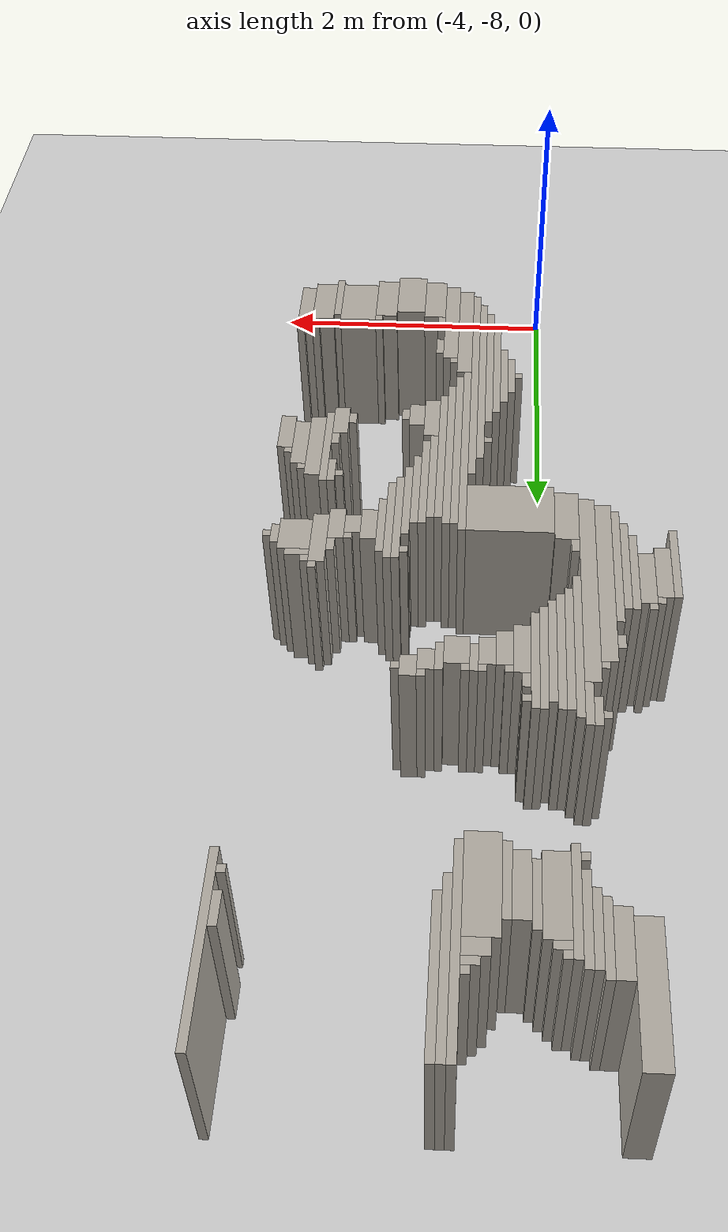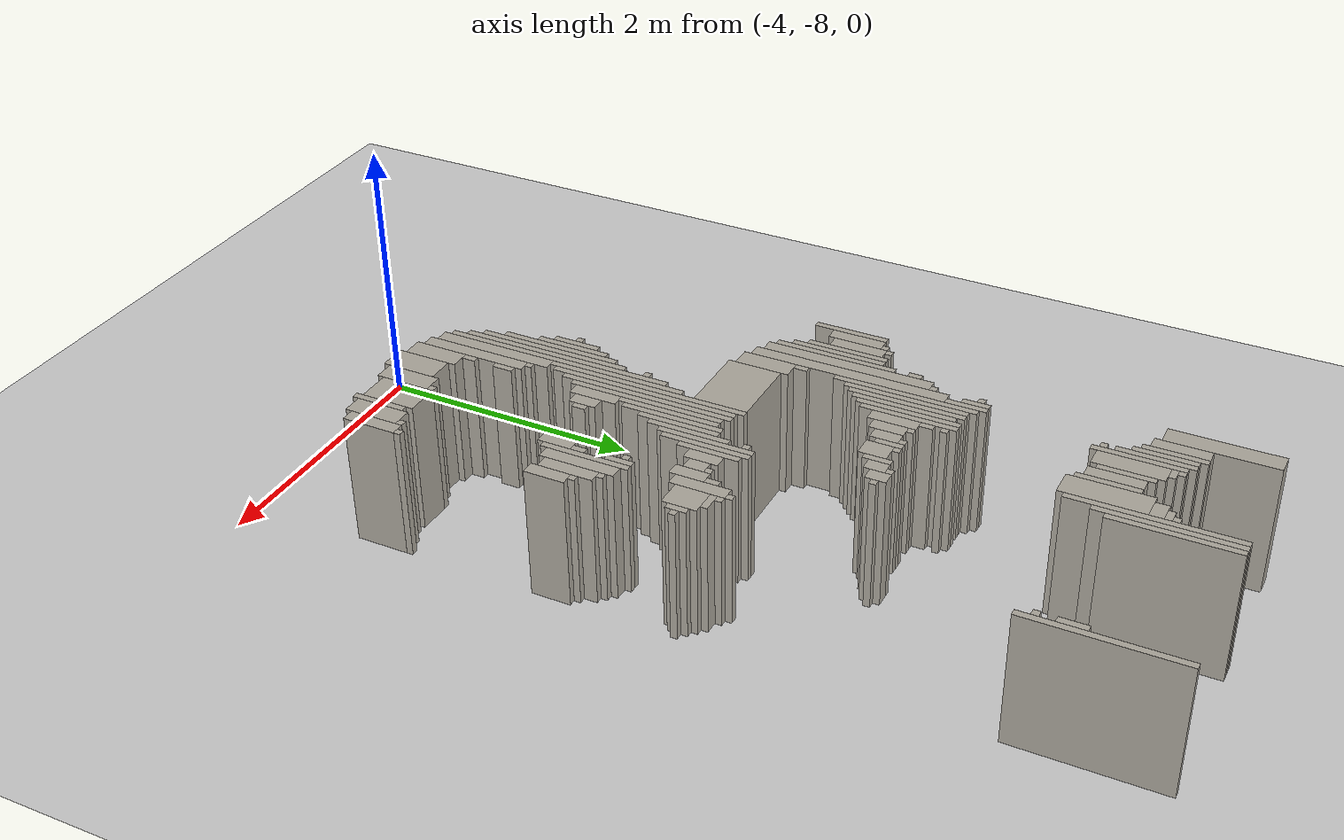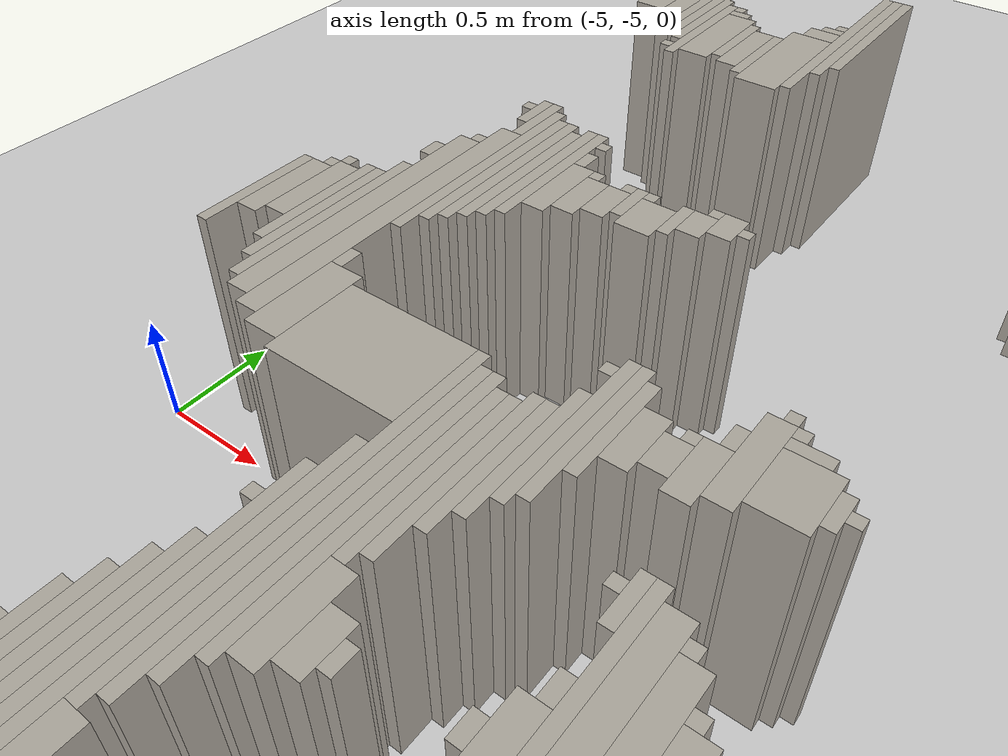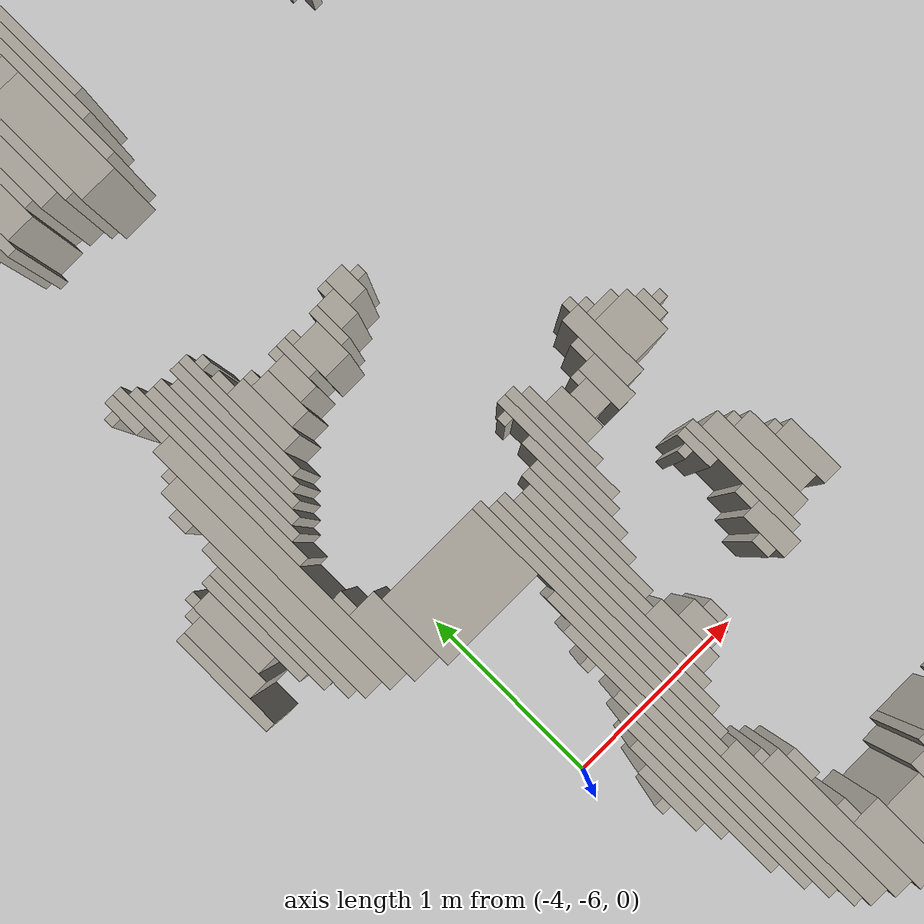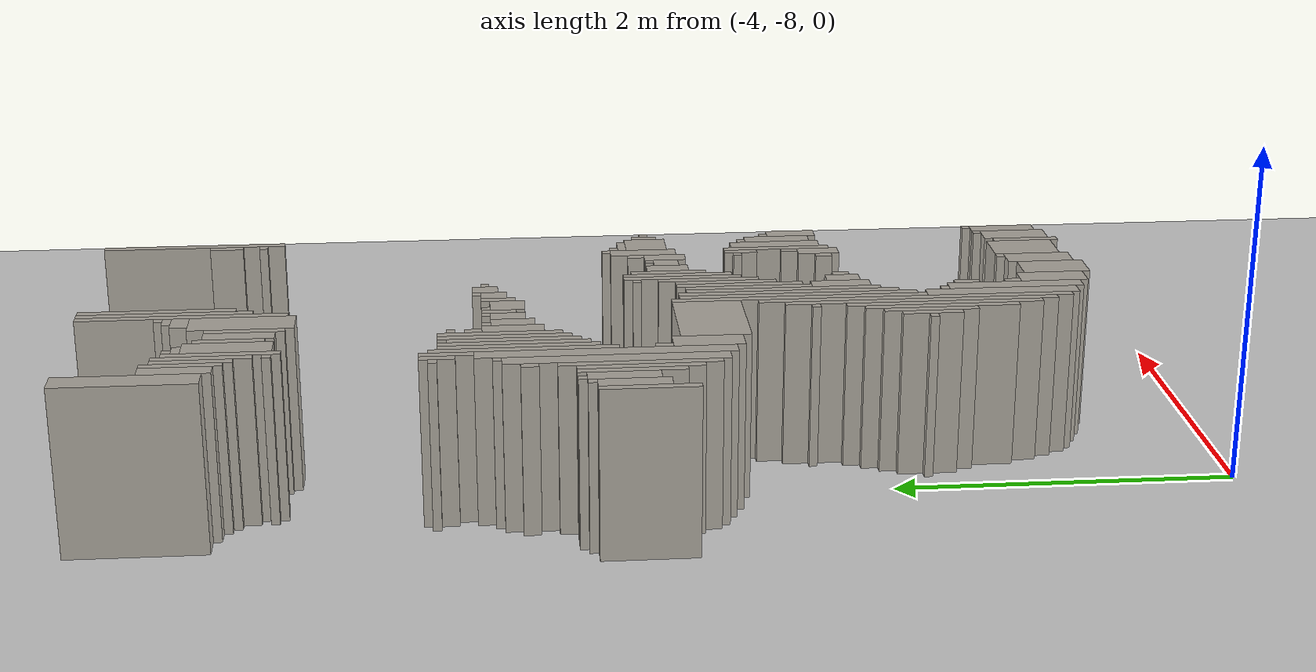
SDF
<sdf version="1.6">
 <world name="fr079_office">
  <include><uri>model://sun</uri></include>
  <include><uri>model://ground_plane</uri></include>
  <model name="fr079_office_walls">
   <static>true</static>
   <link name="w0013">
    <pose>-3.048 -7.106 0.500 0 0 0</pose>
    <collision name="c"><geometry><box><size>0.200 0.400 1.000</size></box></geometry></collision>
    <visual name="v">
     <geometry><box><size>0.200 0.400 1.000</size></box></geometry>
     <material><ambient>0.68 0.66 0.62 1</ambient><diffuse>0.68 0.66 0.62 1</diffuse></material>
    </visual>
   </link>
   <link name="w0032">
    <pose>-3.223 -7.056 0.500 0 0 0</pose>
    <collision name="c"><geometry><box><size>0.150 0.400 1.000</size></box></geometry></collision>
    <visual name="v">
     <geometry><box><size>0.150 0.400 1.000</size></box></geometry>
     <material><ambient>0.68 0.66 0.62 1</ambient><diffuse>0.68 0.66 0.62 1</diffuse></material>
    </visual>
   </link>
   <link name="w0033">
    <pose>-2.873 -7.056 0.500 0 0 0</pose>
    <collision name="c"><geometry><box><size>0.150 0.400 1.000</size></box></geometry></collision>
    <visual name="v">
     <geometry><box><size>0.150 0.400 1.000</size></box></geometry>
     <material><ambient>0.68 0.66 0.62 1</ambient><diffuse>0.68 0.66 0.62 1</diffuse></material>
    </visual>
   </link>
   <link name="w0034">
    <pose>-2.523 -7.056 0.500 0 0 0</pose>
    <collision name="c"><geometry><box><size>0.050 0.400 1.000</size></box></geometry></collision>
    <visual name="v">
     <geometry><box><size>0.050 0.400 1.000</size></box></geometry>
     <material><ambient>0.68 0.66 0.62 1</ambient><diffuse>0.68 0.66 0.62 1</diffuse></material>
    </visual>
   </link>
   <link name="w0056">
    <pose>-3.348 -6.806 0.500 0 0 0</pose>
    <collision name="c"><geometry><box><size>0.100 0.800 1.000</size></box></geometry></collision>
    <visual name="v">
     <geometry><box><size>0.100 0.800 1.000</size></box></geometry>
     <material><ambient>0.68 0.66 0.62 1</ambient><diffuse>0.68 0.66 0.62 1</diffuse></material>
    </visual>
   </link>
   <link name="w0057">
    <pose>-2.673 -7.006 0.500 0 0 0</pose>
    <collision name="c"><geometry><box><size>0.250 0.400 1.000</size></box></geometry></collision>
    <visual name="v">
     <geometry><box><size>0.250 0.400 1.000</size></box></geometry>
     <material><ambient>0.68 0.66 0.62 1</ambient><diffuse>0.68 0.66 0.62 1</diffuse></material>
    </visual>
   </link>
   <link name="w0058">
    <pose>-2.423 -7.006 0.500 0 0 0</pose>
    <collision name="c"><geometry><box><size>0.150 0.400 1.000</size></box></geometry></collision>
    <visual name="v">
     <geometry><box><size>0.150 0.400 1.000</size></box></geometry>
     <material><ambient>0.68 0.66 0.62 1</ambient><diffuse>0.68 0.66 0.62 1</diffuse></material>
    </visual>
   </link>
   <link name="w0083">
    <pose>-3.448 -6.706 0.500 0 0 0</pose>
    <collision name="c"><geometry><box><size>0.100 0.900 1.000</size></box></geometry></collision>
    <visual name="v">
     <geometry><box><size>0.100 0.900 1.000</size></box></geometry>
     <material><ambient>0.68 0.66 0.62 1</ambient><diffuse>0.68 0.66 0.62 1</diffuse></material>
    </visual>
   </link>
   <link name="w0084">
    <pose>-2.298 -6.956 0.500 0 0 0</pose>
    <collision name="c"><geometry><box><size>0.100 0.400 1.000</size></box></geometry></collision>
    <visual name="v">
     <geometry><box><size>0.100 0.400 1.000</size></box></geometry>
     <material><ambient>0.68 0.66 0.62 1</ambient><diffuse>0.68 0.66 0.62 1</diffuse></material>
    </visual>
   </link>
   <link name="w0108">
    <pose>-3.523 -6.181 0.500 0 0 0</pose>
    <collision name="c"><geometry><box><size>0.050 1.850 1.000</size></box></geometry></collision>
    <visual name="v">
     <geometry><box><size>0.050 1.850 1.000</size></box></geometry>
     <material><ambient>0.68 0.66 0.62 1</ambient><diffuse>0.68 0.66 0.62 1</diffuse></material>
    </visual>
   </link>
   <link name="w0140">
    <pose>-3.573 -6.206 0.500 0 0 0</pose>
    <collision name="c"><geometry><box><size>0.050 1.600 1.000</size></box></geometry></collision>
    <visual name="v">
     <geometry><box><size>0.050 1.600 1.000</size></box></geometry>
     <material><ambient>0.68 0.66 0.62 1</ambient><diffuse>0.68 0.66 0.62 1</diffuse></material>
    </visual>
   </link>
   <link name="w0164">
    <pose>-3.623 -6.331 0.500 0 0 0</pose>
    <collision name="c"><geometry><box><size>0.050 1.150 1.000</size></box></geometry></collision>
    <visual name="v">
     <geometry><box><size>0.050 1.150 1.000</size></box></geometry>
     <material><ambient>0.68 0.66 0.62 1</ambient><diffuse>0.68 0.66 0.62 1</diffuse></material>
    </visual>
   </link>
   <link name="w0182">
    <pose>-3.273 -6.806 0.500 0 0 0</pose>
    <collision name="c"><geometry><box><size>0.050 0.100 1.000</size></box></geometry></collision>
    <visual name="v">
     <geometry><box><size>0.050 0.100 1.000</size></box></geometry>
     <material><ambient>0.68 0.66 0.62 1</ambient><diffuse>0.68 0.66 0.62 1</diffuse></material>
    </visual>
   </link>
   <link name="w0183">
    <pose>-2.823 -6.831 0.500 0 0 0</pose>
    <collision name="c"><geometry><box><size>0.050 0.050 1.000</size></box></geometry></collision>
    <visual name="v">
     <geometry><box><size>0.050 0.050 1.000</size></box></geometry>
     <material><ambient>0.68 0.66 0.62 1</ambient><diffuse>0.68 0.66 0.62 1</diffuse></material>
    </visual>
   </link>
   <link name="w0201">
    <pose>-2.373 -6.781 0.500 0 0 0</pose>
    <collision name="c"><geometry><box><size>0.050 0.050 1.000</size></box></geometry></collision>
    <visual name="v">
     <geometry><box><size>0.050 0.050 1.000</size></box></geometry>
     <material><ambient>0.68 0.66 0.62 1</ambient><diffuse>0.68 0.66 0.62 1</diffuse></material>
    </visual>
   </link>
   <link name="w0215">
    <pose>-3.673 -6.306 0.500 0 0 0</pose>
    <collision name="c"><geometry><box><size>0.050 0.900 1.000</size></box></geometry></collision>
    <visual name="v">
     <geometry><box><size>0.050 0.900 1.000</size></box></geometry>
     <material><ambient>0.68 0.66 0.62 1</ambient><diffuse>0.68 0.66 0.62 1</diffuse></material>
    </visual>
   </link>
   <link name="w0216">
    <pose>-2.273 -6.731 0.500 0 0 0</pose>
    <collision name="c"><geometry><box><size>0.050 0.050 1.000</size></box></geometry></collision>
    <visual name="v">
     <geometry><box><size>0.050 0.050 1.000</size></box></geometry>
     <material><ambient>0.68 0.66 0.62 1</ambient><diffuse>0.68 0.66 0.62 1</diffuse></material>
    </visual>
   </link>
   <link name="w0256">
    <pose>-3.273 -6.531 0.500 0 0 0</pose>
    <collision name="c"><geometry><box><size>0.050 0.150 1.000</size></box></geometry></collision>
    <visual name="v">
     <geometry><box><size>0.050 0.150 1.000</size></box></geometry>
     <material><ambient>0.68 0.66 0.62 1</ambient><diffuse>0.68 0.66 0.62 1</diffuse></material>
    </visual>
   </link>
   <link name="w0284">
    <pose>-3.723 -6.231 0.500 0 0 0</pose>
    <collision name="c"><geometry><box><size>0.050 0.550 1.000</size></box></geometry></collision>
    <visual name="v">
     <geometry><box><size>0.050 0.550 1.000</size></box></geometry>
     <material><ambient>0.68 0.66 0.62 1</ambient><diffuse>0.68 0.66 0.62 1</diffuse></material>
    </visual>
   </link>
   <link name="w0319">
    <pose>-3.773 -6.231 0.500 0 0 0</pose>
    <collision name="c"><geometry><box><size>0.050 0.350 1.000</size></box></geometry></collision>
    <visual name="v">
     <geometry><box><size>0.050 0.350 1.000</size></box></geometry>
     <material><ambient>0.68 0.66 0.62 1</ambient><diffuse>0.68 0.66 0.62 1</diffuse></material>
    </visual>
   </link>
   <link name="w0320">
    <pose>-3.373 -6.381 0.500 0 0 0</pose>
    <collision name="c"><geometry><box><size>0.050 0.050 1.000</size></box></geometry></collision>
    <visual name="v">
     <geometry><box><size>0.050 0.050 1.000</size></box></geometry>
     <material><ambient>0.68 0.66 0.62 1</ambient><diffuse>0.68 0.66 0.62 1</diffuse></material>
    </visual>
   </link>
   <link name="w0363">
    <pose>-3.823 -6.231 0.500 0 0 0</pose>
    <collision name="c"><geometry><box><size>0.050 0.050 1.000</size></box></geometry></collision>
    <visual name="v">
     <geometry><box><size>0.050 0.050 1.000</size></box></geometry>
     <material><ambient>0.68 0.66 0.62 1</ambient><diffuse>0.68 0.66 0.62 1</diffuse></material>
    </visual>
   </link>
   <link name="w0364">
    <pose>-3.473 -5.506 0.500 0 0 0</pose>
    <collision name="c"><geometry><box><size>0.050 1.500 1.000</size></box></geometry></collision>
    <visual name="v">
     <geometry><box><size>0.050 1.500 1.000</size></box></geometry>
     <material><ambient>0.68 0.66 0.62 1</ambient><diffuse>0.68 0.66 0.62 1</diffuse></material>
    </visual>
   </link>
   <link name="w0377">
    <pose>-3.423 -5.506 0.500 0 0 0</pose>
    <collision name="c"><geometry><box><size>0.050 1.400 1.000</size></box></geometry></collision>
    <visual name="v">
     <geometry><box><size>0.050 1.400 1.000</size></box></geometry>
     <material><ambient>0.68 0.66 0.62 1</ambient><diffuse>0.68 0.66 0.62 1</diffuse></material>
    </visual>
   </link>
   <link name="w0395">
    <pose>-3.373 -5.456 0.500 0 0 0</pose>
    <collision name="c"><geometry><box><size>0.050 1.300 1.000</size></box></geometry></collision>
    <visual name="v">
     <geometry><box><size>0.050 1.300 1.000</size></box></geometry>
     <material><ambient>0.68 0.66 0.62 1</ambient><diffuse>0.68 0.66 0.62 1</diffuse></material>
    </visual>
   </link>
   <link name="w0422">
    <pose>-3.323 -5.431 0.500 0 0 0</pose>
    <collision name="c"><geometry><box><size>0.050 1.150 1.000</size></box></geometry></collision>
    <visual name="v">
     <geometry><box><size>0.050 1.150 1.000</size></box></geometry>
     <material><ambient>0.68 0.66 0.62 1</ambient><diffuse>0.68 0.66 0.62 1</diffuse></material>
    </visual>
   </link>
   <link name="w0434">
    <pose>-3.248 -5.781 0.500 0 0 0</pose>
    <collision name="c"><geometry><box><size>0.100 0.350 1.000</size></box></geometry></collision>
    <visual name="v">
     <geometry><box><size>0.100 0.350 1.000</size></box></geometry>
     <material><ambient>0.68 0.66 0.62 1</ambient><diffuse>0.68 0.66 0.62 1</diffuse></material>
    </visual>
   </link>
   <link name="w0452">
    <pose>-3.148 -5.806 0.500 0 0 0</pose>
    <collision name="c"><geometry><box><size>0.100 0.200 1.000</size></box></geometry></collision>
    <visual name="v">
     <geometry><box><size>0.100 0.200 1.000</size></box></geometry>
     <material><ambient>0.68 0.66 0.62 1</ambient><diffuse>0.68 0.66 0.62 1</diffuse></material>
    </visual>
   </link>
   <link name="w0466">
    <pose>-3.073 -5.806 0.500 0 0 0</pose>
    <collision name="c"><geometry><box><size>0.050 0.100 1.000</size></box></geometry></collision>
    <visual name="v">
     <geometry><box><size>0.050 0.100 1.000</size></box></geometry>
     <material><ambient>0.68 0.66 0.62 1</ambient><diffuse>0.68 0.66 0.62 1</diffuse></material>
    </visual>
   </link>
   <link name="w0467">
    <pose>-2.648 -5.731 0.500 0 0 0</pose>
    <collision name="c"><geometry><box><size>0.100 0.250 1.000</size></box></geometry></collision>
    <visual name="v">
     <geometry><box><size>0.100 0.250 1.000</size></box></geometry>
     <material><ambient>0.68 0.66 0.62 1</ambient><diffuse>0.68 0.66 0.62 1</diffuse></material>
    </visual>
   </link>
   <link name="w0480">
    <pose>-2.723 -5.756 0.500 0 0 0</pose>
    <collision name="c"><geometry><box><size>0.050 0.100 1.000</size></box></geometry></collision>
    <visual name="v">
     <geometry><box><size>0.050 0.100 1.000</size></box></geometry>
     <material><ambient>0.68 0.66 0.62 1</ambient><diffuse>0.68 0.66 0.62 1</diffuse></material>
    </visual>
   </link>
   <link name="w0481">
    <pose>-2.573 -5.481 0.500 0 0 0</pose>
    <collision name="c"><geometry><box><size>0.050 0.650 1.000</size></box></geometry></collision>
    <visual name="v">
     <geometry><box><size>0.050 0.650 1.000</size></box></geometry>
     <material><ambient>0.68 0.66 0.62 1</ambient><diffuse>0.68 0.66 0.62 1</diffuse></material>
    </visual>
   </link>
   <link name="w0496">
    <pose>-2.498 -5.481 0.500 0 0 0</pose>
    <collision name="c"><geometry><box><size>0.100 0.550 1.000</size></box></geometry></collision>
    <visual name="v">
     <geometry><box><size>0.100 0.550 1.000</size></box></geometry>
     <material><ambient>0.68 0.66 0.62 1</ambient><diffuse>0.68 0.66 0.62 1</diffuse></material>
    </visual>
   </link>
   <link name="w0497">
    <pose>-2.298 -5.606 0.500 0 0 0</pose>
    <collision name="c"><geometry><box><size>0.100 0.300 1.000</size></box></geometry></collision>
    <visual name="v">
     <geometry><box><size>0.100 0.300 1.000</size></box></geometry>
     <material><ambient>0.68 0.66 0.62 1</ambient><diffuse>0.68 0.66 0.62 1</diffuse></material>
    </visual>
   </link>
   <link name="w0512">
    <pose>-2.398 -5.506 0.500 0 0 0</pose>
    <collision name="c"><geometry><box><size>0.100 0.400 1.000</size></box></geometry></collision>
    <visual name="v">
     <geometry><box><size>0.100 0.400 1.000</size></box></geometry>
     <material><ambient>0.68 0.66 0.62 1</ambient><diffuse>0.68 0.66 0.62 1</diffuse></material>
    </visual>
   </link>
   <link name="w0532">
    <pose>-3.623 -5.581 0.500 0 0 0</pose>
    <collision name="c"><geometry><box><size>0.050 0.050 1.000</size></box></geometry></collision>
    <visual name="v">
     <geometry><box><size>0.050 0.050 1.000</size></box></geometry>
     <material><ambient>0.68 0.66 0.62 1</ambient><diffuse>0.68 0.66 0.62 1</diffuse></material>
    </visual>
   </link>
   <link name="w0533">
    <pose>-3.273 -5.231 0.500 0 0 0</pose>
    <collision name="c"><geometry><box><size>0.050 0.750 1.000</size></box></geometry></collision>
    <visual name="v">
     <geometry><box><size>0.050 0.750 1.000</size></box></geometry>
     <material><ambient>0.68 0.66 0.62 1</ambient><diffuse>0.68 0.66 0.62 1</diffuse></material>
    </visual>
   </link>
   <link name="w0534">
    <pose>-2.623 -5.556 0.500 0 0 0</pose>
    <collision name="c"><geometry><box><size>0.050 0.100 1.000</size></box></geometry></collision>
    <visual name="v">
     <geometry><box><size>0.050 0.100 1.000</size></box></geometry>
     <material><ambient>0.68 0.66 0.62 1</ambient><diffuse>0.68 0.66 0.62 1</diffuse></material>
    </visual>
   </link>
   <link name="w0546">
    <pose>-3.223 -5.181 0.500 0 0 0</pose>
    <collision name="c"><geometry><box><size>0.050 0.750 1.000</size></box></geometry></collision>
    <visual name="v">
     <geometry><box><size>0.050 0.750 1.000</size></box></geometry>
     <material><ambient>0.68 0.66 0.62 1</ambient><diffuse>0.68 0.66 0.62 1</diffuse></material>
    </visual>
   </link>
   <link name="w0565">
    <pose>-2.323 -5.431 0.500 0 0 0</pose>
    <collision name="c"><geometry><box><size>0.050 0.050 1.000</size></box></geometry></collision>
    <visual name="v">
     <geometry><box><size>0.050 0.050 1.000</size></box></geometry>
     <material><ambient>0.68 0.66 0.62 1</ambient><diffuse>0.68 0.66 0.62 1</diffuse></material>
    </visual>
   </link>
   <link name="w0577">
    <pose>-3.173 -5.106 0.500 0 0 0</pose>
    <collision name="c"><geometry><box><size>0.050 0.600 1.000</size></box></geometry></collision>
    <visual name="v">
     <geometry><box><size>0.050 0.600 1.000</size></box></geometry>
     <material><ambient>0.68 0.66 0.62 1</ambient><diffuse>0.68 0.66 0.62 1</diffuse></material>
    </visual>
   </link>
   <link name="w0590">
    <pose>-2.623 -5.256 0.500 0 0 0</pose>
    <collision name="c"><geometry><box><size>0.050 0.200 1.000</size></box></geometry></collision>
    <visual name="v">
     <geometry><box><size>0.050 0.200 1.000</size></box></geometry>
     <material><ambient>0.68 0.66 0.62 1</ambient><diffuse>0.68 0.66 0.62 1</diffuse></material>
    </visual>
   </link>
   <link name="w0605">
    <pose>-3.123 -5.006 0.500 0 0 0</pose>
    <collision name="c"><geometry><box><size>0.050 0.600 1.000</size></box></geometry></collision>
    <visual name="v">
     <geometry><box><size>0.050 0.600 1.000</size></box></geometry>
     <material><ambient>0.68 0.66 0.62 1</ambient><diffuse>0.68 0.66 0.62 1</diffuse></material>
    </visual>
   </link>
   <link name="w0606">
    <pose>-2.423 -5.281 0.500 0 0 0</pose>
    <collision name="c"><geometry><box><size>0.050 0.050 1.000</size></box></geometry></collision>
    <visual name="v">
     <geometry><box><size>0.050 0.050 1.000</size></box></geometry>
     <material><ambient>0.68 0.66 0.62 1</ambient><diffuse>0.68 0.66 0.62 1</diffuse></material>
    </visual>
   </link>
   <link name="w0621">
    <pose>-2.673 -5.231 0.500 0 0 0</pose>
    <collision name="c"><geometry><box><size>0.050 0.050 1.000</size></box></geometry></collision>
    <visual name="v">
     <geometry><box><size>0.050 0.050 1.000</size></box></geometry>
     <material><ambient>0.68 0.66 0.62 1</ambient><diffuse>0.68 0.66 0.62 1</diffuse></material>
    </visual>
   </link>
   <link name="w0637">
    <pose>-3.073 -4.856 0.500 0 0 0</pose>
    <collision name="c"><geometry><box><size>0.050 0.700 1.000</size></box></geometry></collision>
    <visual name="v">
     <geometry><box><size>0.050 0.700 1.000</size></box></geometry>
     <material><ambient>0.68 0.66 0.62 1</ambient><diffuse>0.68 0.66 0.62 1</diffuse></material>
    </visual>
   </link>
   <link name="w0651">
    <pose>-3.773 -4.956 0.500 0 0 0</pose>
    <collision name="c"><geometry><box><size>0.550 0.400 1.000</size></box></geometry></collision>
    <visual name="v">
     <geometry><box><size>0.550 0.400 1.000</size></box></geometry>
     <material><ambient>0.68 0.66 0.62 1</ambient><diffuse>0.68 0.66 0.62 1</diffuse></material>
    </visual>
   </link>
   <link name="w0652">
    <pose>-3.023 -4.831 0.500 0 0 0</pose>
    <collision name="c"><geometry><box><size>0.050 0.650 1.000</size></box></geometry></collision>
    <visual name="v">
     <geometry><box><size>0.050 0.650 1.000</size></box></geometry>
     <material><ambient>0.68 0.66 0.62 1</ambient><diffuse>0.68 0.66 0.62 1</diffuse></material>
    </visual>
   </link>
   <link name="w0662">
    <pose>-4.123 -4.906 0.500 0 0 0</pose>
    <collision name="c"><geometry><box><size>0.150 0.400 1.000</size></box></geometry></collision>
    <visual name="v">
     <geometry><box><size>0.150 0.400 1.000</size></box></geometry>
     <material><ambient>0.68 0.66 0.62 1</ambient><diffuse>0.68 0.66 0.62 1</diffuse></material>
    </visual>
   </link>
   <link name="w0674">
    <pose>-4.248 -4.331 0.500 0 0 0</pose>
    <collision name="c"><geometry><box><size>0.100 1.450 1.000</size></box></geometry></collision>
    <visual name="v">
     <geometry><box><size>0.100 1.450 1.000</size></box></geometry>
     <material><ambient>0.68 0.66 0.62 1</ambient><diffuse>0.68 0.66 0.62 1</diffuse></material>
    </visual>
   </link>
   <link name="w0682">
    <pose>-4.348 -4.381 0.500 0 0 0</pose>
    <collision name="c"><geometry><box><size>0.100 1.250 1.000</size></box></geometry></collision>
    <visual name="v">
     <geometry><box><size>0.100 1.250 1.000</size></box></geometry>
     <material><ambient>0.68 0.66 0.62 1</ambient><diffuse>0.68 0.66 0.62 1</diffuse></material>
    </visual>
   </link>
   <link name="w0683">
    <pose>-2.973 -4.781 0.500 0 0 0</pose>
    <collision name="c"><geometry><box><size>0.050 0.450 1.000</size></box></geometry></collision>
    <visual name="v">
     <geometry><box><size>0.050 0.450 1.000</size></box></geometry>
     <material><ambient>0.68 0.66 0.62 1</ambient><diffuse>0.68 0.66 0.62 1</diffuse></material>
    </visual>
   </link>
   <link name="w0695">
    <pose>-4.423 -4.506 0.500 0 0 0</pose>
    <collision name="c"><geometry><box><size>0.050 0.900 1.000</size></box></geometry></collision>
    <visual name="v">
     <geometry><box><size>0.050 0.900 1.000</size></box></geometry>
     <material><ambient>0.68 0.66 0.62 1</ambient><diffuse>0.68 0.66 0.62 1</diffuse></material>
    </visual>
   </link>
   <link name="w0703">
    <pose>-2.898 -4.781 0.500 0 0 0</pose>
    <collision name="c"><geometry><box><size>0.100 0.250 1.000</size></box></geometry></collision>
    <visual name="v">
     <geometry><box><size>0.100 0.250 1.000</size></box></geometry>
     <material><ambient>0.68 0.66 0.62 1</ambient><diffuse>0.68 0.66 0.62 1</diffuse></material>
    </visual>
   </link>
   <link name="w0704">
    <pose>-2.698 -4.781 0.500 0 0 0</pose>
    <collision name="c"><geometry><box><size>0.100 0.250 1.000</size></box></geometry></collision>
    <visual name="v">
     <geometry><box><size>0.100 0.250 1.000</size></box></geometry>
     <material><ambient>0.68 0.66 0.62 1</ambient><diffuse>0.68 0.66 0.62 1</diffuse></material>
    </visual>
   </link>
   <link name="w0716">
    <pose>-4.473 -4.506 0.500 0 0 0</pose>
    <collision name="c"><geometry><box><size>0.050 0.700 1.000</size></box></geometry></collision>
    <visual name="v">
     <geometry><box><size>0.050 0.700 1.000</size></box></geometry>
     <material><ambient>0.68 0.66 0.62 1</ambient><diffuse>0.68 0.66 0.62 1</diffuse></material>
    </visual>
   </link>
   <link name="w0717">
    <pose>-2.798 -4.781 0.500 0 0 0</pose>
    <collision name="c"><geometry><box><size>0.100 0.150 1.000</size></box></geometry></collision>
    <visual name="v">
     <geometry><box><size>0.100 0.150 1.000</size></box></geometry>
     <material><ambient>0.68 0.66 0.62 1</ambient><diffuse>0.68 0.66 0.62 1</diffuse></material>
    </visual>
   </link>
   <link name="w0718">
    <pose>-2.598 -4.656 0.500 0 0 0</pose>
    <collision name="c"><geometry><box><size>0.100 0.400 1.000</size></box></geometry></collision>
    <visual name="v">
     <geometry><box><size>0.100 0.400 1.000</size></box></geometry>
     <material><ambient>0.68 0.66 0.62 1</ambient><diffuse>0.68 0.66 0.62 1</diffuse></material>
    </visual>
   </link>
   <link name="w0728">
    <pose>-4.773 -4.531 0.500 0 0 0</pose>
    <collision name="c"><geometry><box><size>0.050 0.550 1.000</size></box></geometry></collision>
    <visual name="v">
     <geometry><box><size>0.050 0.550 1.000</size></box></geometry>
     <material><ambient>0.68 0.66 0.62 1</ambient><diffuse>0.68 0.66 0.62 1</diffuse></material>
    </visual>
   </link>
   <link name="w0729">
    <pose>-2.448 -4.681 0.500 0 0 0</pose>
    <collision name="c"><geometry><box><size>0.200 0.250 1.000</size></box></geometry></collision>
    <visual name="v">
     <geometry><box><size>0.200 0.250 1.000</size></box></geometry>
     <material><ambient>0.68 0.66 0.62 1</ambient><diffuse>0.68 0.66 0.62 1</diffuse></material>
    </visual>
   </link>
   <link name="w0741">
    <pose>-4.523 -4.456 0.500 0 0 0</pose>
    <collision name="c"><geometry><box><size>0.050 0.600 1.000</size></box></geometry></collision>
    <visual name="v">
     <geometry><box><size>0.050 0.600 1.000</size></box></geometry>
     <material><ambient>0.68 0.66 0.62 1</ambient><diffuse>0.68 0.66 0.62 1</diffuse></material>
    </visual>
   </link>
   <link name="w0742">
    <pose>-2.323 -4.681 0.500 0 0 0</pose>
    <collision name="c"><geometry><box><size>0.050 0.150 1.000</size></box></geometry></collision>
    <visual name="v">
     <geometry><box><size>0.050 0.150 1.000</size></box></geometry>
     <material><ambient>0.68 0.66 0.62 1</ambient><diffuse>0.68 0.66 0.62 1</diffuse></material>
    </visual>
   </link>
   <link name="w0756">
    <pose>-4.173 -4.656 0.500 0 0 0</pose>
    <collision name="c"><geometry><box><size>0.050 0.100 1.000</size></box></geometry></collision>
    <visual name="v">
     <geometry><box><size>0.050 0.100 1.000</size></box></geometry>
     <material><ambient>0.68 0.66 0.62 1</ambient><diffuse>0.68 0.66 0.62 1</diffuse></material>
    </visual>
   </link>
   <link name="w0757">
    <pose>-2.773 -4.681 0.500 0 0 0</pose>
    <collision name="c"><geometry><box><size>0.050 0.050 1.000</size></box></geometry></collision>
    <visual name="v">
     <geometry><box><size>0.050 0.050 1.000</size></box></geometry>
     <material><ambient>0.68 0.66 0.62 1</ambient><diffuse>0.68 0.66 0.62 1</diffuse></material>
    </visual>
   </link>
   <link name="w0758">
    <pose>-2.273 -4.681 0.500 0 0 0</pose>
    <collision name="c"><geometry><box><size>0.050 0.050 1.000</size></box></geometry></collision>
    <visual name="v">
     <geometry><box><size>0.050 0.050 1.000</size></box></geometry>
     <material><ambient>0.68 0.66 0.62 1</ambient><diffuse>0.68 0.66 0.62 1</diffuse></material>
    </visual>
   </link>
   <link name="w0770">
    <pose>-4.698 -4.456 0.500 0 0 0</pose>
    <collision name="c"><geometry><box><size>0.100 0.400 1.000</size></box></geometry></collision>
    <visual name="v">
     <geometry><box><size>0.100 0.400 1.000</size></box></geometry>
     <material><ambient>0.68 0.66 0.62 1</ambient><diffuse>0.68 0.66 0.62 1</diffuse></material>
    </visual>
   </link>
   <link name="w0771">
    <pose>-2.673 -4.606 0.500 0 0 0</pose>
    <collision name="c"><geometry><box><size>0.050 0.100 1.000</size></box></geometry></collision>
    <visual name="v">
     <geometry><box><size>0.050 0.100 1.000</size></box></geometry>
     <material><ambient>0.68 0.66 0.62 1</ambient><diffuse>0.68 0.66 0.62 1</diffuse></material>
    </visual>
   </link>
   <link name="w0787">
    <pose>-4.598 -4.406 0.500 0 0 0</pose>
    <collision name="c"><geometry><box><size>0.100 0.400 1.000</size></box></geometry></collision>
    <visual name="v">
     <geometry><box><size>0.100 0.400 1.000</size></box></geometry>
     <material><ambient>0.68 0.66 0.62 1</ambient><diffuse>0.68 0.66 0.62 1</diffuse></material>
    </visual>
   </link>
   <link name="w0788">
    <pose>-3.123 -4.581 0.500 0 0 0</pose>
    <collision name="c"><geometry><box><size>0.050 0.050 1.000</size></box></geometry></collision>
    <visual name="v">
     <geometry><box><size>0.050 0.050 1.000</size></box></geometry>
     <material><ambient>0.68 0.66 0.62 1</ambient><diffuse>0.68 0.66 0.62 1</diffuse></material>
    </visual>
   </link>
   <link name="w0805">
    <pose>-2.473 -4.531 0.500 0 0 0</pose>
    <collision name="c"><geometry><box><size>0.150 0.050 1.000</size></box></geometry></collision>
    <visual name="v">
     <geometry><box><size>0.150 0.050 1.000</size></box></geometry>
     <material><ambient>0.68 0.66 0.62 1</ambient><diffuse>0.68 0.66 0.62 1</diffuse></material>
    </visual>
   </link>
   <link name="w0821">
    <pose>-2.523 -4.481 0.500 0 0 0</pose>
    <collision name="c"><geometry><box><size>0.050 0.050 1.000</size></box></geometry></collision>
    <visual name="v">
     <geometry><box><size>0.050 0.050 1.000</size></box></geometry>
     <material><ambient>0.68 0.66 0.62 1</ambient><diffuse>0.68 0.66 0.62 1</diffuse></material>
    </visual>
   </link>
   <link name="w0838">
    <pose>-2.573 -4.431 0.500 0 0 0</pose>
    <collision name="c"><geometry><box><size>0.050 0.050 1.000</size></box></geometry></collision>
    <visual name="v">
     <geometry><box><size>0.050 0.050 1.000</size></box></geometry>
     <material><ambient>0.68 0.66 0.62 1</ambient><diffuse>0.68 0.66 0.62 1</diffuse></material>
    </visual>
   </link>
   <link name="w0852">
    <pose>-4.173 -3.881 0.500 0 0 0</pose>
    <collision name="c"><geometry><box><size>0.050 1.050 1.000</size></box></geometry></collision>
    <visual name="v">
     <geometry><box><size>0.050 1.050 1.000</size></box></geometry>
     <material><ambient>0.68 0.66 0.62 1</ambient><diffuse>0.68 0.66 0.62 1</diffuse></material>
    </visual>
   </link>
   <link name="w0879">
    <pose>-4.123 -3.856 0.500 0 0 0</pose>
    <collision name="c"><geometry><box><size>0.050 0.900 1.000</size></box></geometry></collision>
    <visual name="v">
     <geometry><box><size>0.050 0.900 1.000</size></box></geometry>
     <material><ambient>0.68 0.66 0.62 1</ambient><diffuse>0.68 0.66 0.62 1</diffuse></material>
    </visual>
   </link>
   <link name="w0891">
    <pose>-4.673 -4.231 0.500 0 0 0</pose>
    <collision name="c"><geometry><box><size>0.050 0.050 1.000</size></box></geometry></collision>
    <visual name="v">
     <geometry><box><size>0.050 0.050 1.000</size></box></geometry>
     <material><ambient>0.68 0.66 0.62 1</ambient><diffuse>0.68 0.66 0.62 1</diffuse></material>
    </visual>
   </link>
   <link name="w0892">
    <pose>-4.073 -3.831 0.500 0 0 0</pose>
    <collision name="c"><geometry><box><size>0.050 0.850 1.000</size></box></geometry></collision>
    <visual name="v">
     <geometry><box><size>0.050 0.850 1.000</size></box></geometry>
     <material><ambient>0.68 0.66 0.62 1</ambient><diffuse>0.68 0.66 0.62 1</diffuse></material>
    </visual>
   </link>
   <link name="w0910">
    <pose>-4.623 -4.181 0.500 0 0 0</pose>
    <collision name="c"><geometry><box><size>0.050 0.050 1.000</size></box></geometry></collision>
    <visual name="v">
     <geometry><box><size>0.050 0.050 1.000</size></box></geometry>
     <material><ambient>0.68 0.66 0.62 1</ambient><diffuse>0.68 0.66 0.62 1</diffuse></material>
    </visual>
   </link>
   <link name="w0911">
    <pose>-4.023 -3.831 0.500 0 0 0</pose>
    <collision name="c"><geometry><box><size>0.050 0.750 1.000</size></box></geometry></collision>
    <visual name="v">
     <geometry><box><size>0.050 0.750 1.000</size></box></geometry>
     <material><ambient>0.68 0.66 0.62 1</ambient><diffuse>0.68 0.66 0.62 1</diffuse></material>
    </visual>
   </link>
   <link name="w0929">
    <pose>-3.973 -3.781 0.500 0 0 0</pose>
    <collision name="c"><geometry><box><size>0.050 0.750 1.000</size></box></geometry></collision>
    <visual name="v">
     <geometry><box><size>0.050 0.750 1.000</size></box></geometry>
     <material><ambient>0.68 0.66 0.62 1</ambient><diffuse>0.68 0.66 0.62 1</diffuse></material>
    </visual>
   </link>
   <link name="w0945">
    <pose>-3.923 -3.756 0.500 0 0 0</pose>
    <collision name="c"><geometry><box><size>0.050 0.700 1.000</size></box></geometry></collision>
    <visual name="v">
     <geometry><box><size>0.050 0.700 1.000</size></box></geometry>
     <material><ambient>0.68 0.66 0.62 1</ambient><diffuse>0.68 0.66 0.62 1</diffuse></material>
    </visual>
   </link>
   <link name="w0965">
    <pose>-3.848 -3.831 0.500 0 0 0</pose>
    <collision name="c"><geometry><box><size>0.100 0.350 1.000</size></box></geometry></collision>
    <visual name="v">
     <geometry><box><size>0.100 0.350 1.000</size></box></geometry>
     <material><ambient>0.68 0.66 0.62 1</ambient><diffuse>0.68 0.66 0.62 1</diffuse></material>
    </visual>
   </link>
   <link name="w0978">
    <pose>-4.423 -3.906 0.500 0 0 0</pose>
    <collision name="c"><geometry><box><size>0.050 0.100 1.000</size></box></geometry></collision>
    <visual name="v">
     <geometry><box><size>0.050 0.100 1.000</size></box></geometry>
     <material><ambient>0.68 0.66 0.62 1</ambient><diffuse>0.68 0.66 0.62 1</diffuse></material>
    </visual>
   </link>
   <link name="w0979">
    <pose>-3.748 -3.831 0.500 0 0 0</pose>
    <collision name="c"><geometry><box><size>0.100 0.250 1.000</size></box></geometry></collision>
    <visual name="v">
     <geometry><box><size>0.100 0.250 1.000</size></box></geometry>
     <material><ambient>0.68 0.66 0.62 1</ambient><diffuse>0.68 0.66 0.62 1</diffuse></material>
    </visual>
   </link>
   <link name="w0996">
    <pose>-3.648 -3.806 0.500 0 0 0</pose>
    <collision name="c"><geometry><box><size>0.100 0.200 1.000</size></box></geometry></collision>
    <visual name="v">
     <geometry><box><size>0.100 0.200 1.000</size></box></geometry>
     <material><ambient>0.68 0.66 0.62 1</ambient><diffuse>0.68 0.66 0.62 1</diffuse></material>
    </visual>
   </link>
   <link name="w0997">
    <pose>-3.473 -3.806 0.500 0 0 0</pose>
    <collision name="c"><geometry><box><size>0.150 0.200 1.000</size></box></geometry></collision>
    <visual name="v">
     <geometry><box><size>0.150 0.200 1.000</size></box></geometry>
     <material><ambient>0.68 0.66 0.62 1</ambient><diffuse>0.68 0.66 0.62 1</diffuse></material>
    </visual>
   </link>
   <link name="w1005">
    <pose>-3.573 -3.756 0.500 0 0 0</pose>
    <collision name="c"><geometry><box><size>0.050 0.200 1.000</size></box></geometry></collision>
    <visual name="v">
     <geometry><box><size>0.050 0.200 1.000</size></box></geometry>
     <material><ambient>0.68 0.66 0.62 1</ambient><diffuse>0.68 0.66 0.62 1</diffuse></material>
    </visual>
   </link>
   <link name="w1006">
    <pose>-3.373 -3.756 0.500 0 0 0</pose>
    <collision name="c"><geometry><box><size>0.050 0.200 1.000</size></box></geometry></collision>
    <visual name="v">
     <geometry><box><size>0.050 0.200 1.000</size></box></geometry>
     <material><ambient>0.68 0.66 0.62 1</ambient><diffuse>0.68 0.66 0.62 1</diffuse></material>
    </visual>
   </link>
   <link name="w1022">
    <pose>-3.298 -3.731 0.500 0 0 0</pose>
    <collision name="c"><geometry><box><size>0.100 0.150 1.000</size></box></geometry></collision>
    <visual name="v">
     <geometry><box><size>0.100 0.150 1.000</size></box></geometry>
     <material><ambient>0.68 0.66 0.62 1</ambient><diffuse>0.68 0.66 0.62 1</diffuse></material>
    </visual>
   </link>
   <link name="w1034">
    <pose>-4.323 -3.731 0.500 0 0 0</pose>
    <collision name="c"><geometry><box><size>0.050 0.050 1.000</size></box></geometry></collision>
    <visual name="v">
     <geometry><box><size>0.050 0.050 1.000</size></box></geometry>
     <material><ambient>0.68 0.66 0.62 1</ambient><diffuse>0.68 0.66 0.62 1</diffuse></material>
    </visual>
   </link>
   <link name="w1035">
    <pose>-3.198 -3.681 0.500 0 0 0</pose>
    <collision name="c"><geometry><box><size>0.100 0.150 1.000</size></box></geometry></collision>
    <visual name="v">
     <geometry><box><size>0.100 0.150 1.000</size></box></geometry>
     <material><ambient>0.68 0.66 0.62 1</ambient><diffuse>0.68 0.66 0.62 1</diffuse></material>
    </visual>
   </link>
   <link name="w1045">
    <pose>-3.773 -3.681 0.500 0 0 0</pose>
    <collision name="c"><geometry><box><size>0.050 0.050 1.000</size></box></geometry></collision>
    <visual name="v">
     <geometry><box><size>0.050 0.050 1.000</size></box></geometry>
     <material><ambient>0.68 0.66 0.62 1</ambient><diffuse>0.68 0.66 0.62 1</diffuse></material>
    </visual>
   </link>
   <link name="w1046">
    <pose>-3.623 -3.681 0.500 0 0 0</pose>
    <collision name="c"><geometry><box><size>0.050 0.050 1.000</size></box></geometry></collision>
    <visual name="v">
     <geometry><box><size>0.050 0.050 1.000</size></box></geometry>
     <material><ambient>0.68 0.66 0.62 1</ambient><diffuse>0.68 0.66 0.62 1</diffuse></material>
    </visual>
   </link>
   <link name="w1047">
    <pose>-3.523 -3.681 0.500 0 0 0</pose>
    <collision name="c"><geometry><box><size>0.050 0.050 1.000</size></box></geometry></collision>
    <visual name="v">
     <geometry><box><size>0.050 0.050 1.000</size></box></geometry>
     <material><ambient>0.68 0.66 0.62 1</ambient><diffuse>0.68 0.66 0.62 1</diffuse></material>
    </visual>
   </link>
   <link name="w1048">
    <pose>-3.123 -3.681 0.500 0 0 0</pose>
    <collision name="c"><geometry><box><size>0.050 0.050 1.000</size></box></geometry></collision>
    <visual name="v">
     <geometry><box><size>0.050 0.050 1.000</size></box></geometry>
     <material><ambient>0.68 0.66 0.62 1</ambient><diffuse>0.68 0.66 0.62 1</diffuse></material>
    </visual>
   </link>
   <link name="w1058">
    <pose>-3.873 -3.606 0.500 0 0 0</pose>
    <collision name="c"><geometry><box><size>0.050 0.100 1.000</size></box></geometry></collision>
    <visual name="v">
     <geometry><box><size>0.050 0.100 1.000</size></box></geometry>
     <material><ambient>0.68 0.66 0.62 1</ambient><diffuse>0.68 0.66 0.62 1</diffuse></material>
    </visual>
   </link>
   <link name="w1059">
    <pose>-3.273 -3.631 0.500 0 0 0</pose>
    <collision name="c"><geometry><box><size>0.050 0.050 1.000</size></box></geometry></collision>
    <visual name="v">
     <geometry><box><size>0.050 0.050 1.000</size></box></geometry>
     <material><ambient>0.68 0.66 0.62 1</ambient><diffuse>0.68 0.66 0.62 1</diffuse></material>
    </visual>
   </link>
   <link name="w1068">
    <pose>-4.223 -3.456 0.500 0 0 0</pose>
    <collision name="c"><geometry><box><size>0.050 0.300 1.000</size></box></geometry></collision>
    <visual name="v">
     <geometry><box><size>0.050 0.300 1.000</size></box></geometry>
     <material><ambient>0.68 0.66 0.62 1</ambient><diffuse>0.68 0.66 0.62 1</diffuse></material>
    </visual>
   </link>
   <link name="w1083">
    <pose>-4.273 -3.406 0.500 0 0 0</pose>
    <collision name="c"><geometry><box><size>0.050 0.200 1.000</size></box></geometry></collision>
    <visual name="v">
     <geometry><box><size>0.050 0.200 1.000</size></box></geometry>
     <material><ambient>0.68 0.66 0.62 1</ambient><diffuse>0.68 0.66 0.62 1</diffuse></material>
    </visual>
   </link>
   <link name="w1084">
    <pose>-3.873 -3.481 0.500 0 0 0</pose>
    <collision name="c"><geometry><box><size>0.050 0.050 1.000</size></box></geometry></collision>
    <visual name="v">
     <geometry><box><size>0.050 0.050 1.000</size></box></geometry>
     <material><ambient>0.68 0.66 0.62 1</ambient><diffuse>0.68 0.66 0.62 1</diffuse></material>
    </visual>
   </link>
   <link name="w1097">
    <pose>-4.323 -3.381 0.500 0 0 0</pose>
    <collision name="c"><geometry><box><size>0.050 0.050 1.000</size></box></geometry></collision>
    <visual name="v">
     <geometry><box><size>0.050 0.050 1.000</size></box></geometry>
     <material><ambient>0.68 0.66 0.62 1</ambient><diffuse>0.68 0.66 0.62 1</diffuse></material>
    </visual>
   </link>
   <link name="w1253">
    <pose>-3.648 -2.306 0.500 0 0 0</pose>
    <collision name="c"><geometry><box><size>0.200 0.600 1.000</size></box></geometry></collision>
    <visual name="v">
     <geometry><box><size>0.200 0.600 1.000</size></box></geometry>
     <material><ambient>0.68 0.66 0.62 1</ambient><diffuse>0.68 0.66 0.62 1</diffuse></material>
    </visual>
   </link>
   <link name="w1269">
    <pose>-4.123 -2.231 0.500 0 0 0</pose>
    <collision name="c"><geometry><box><size>0.050 0.650 1.000</size></box></geometry></collision>
    <visual name="v">
     <geometry><box><size>0.050 0.650 1.000</size></box></geometry>
     <material><ambient>0.68 0.66 0.62 1</ambient><diffuse>0.68 0.66 0.62 1</diffuse></material>
    </visual>
   </link>
   <link name="w1270">
    <pose>-3.773 -2.331 0.500 0 0 0</pose>
    <collision name="c"><geometry><box><size>0.050 0.450 1.000</size></box></geometry></collision>
    <visual name="v">
     <geometry><box><size>0.050 0.450 1.000</size></box></geometry>
     <material><ambient>0.68 0.66 0.62 1</ambient><diffuse>0.68 0.66 0.62 1</diffuse></material>
    </visual>
   </link>
   <link name="w1271">
    <pose>-3.523 -1.956 0.500 0 0 0</pose>
    <collision name="c"><geometry><box><size>0.050 1.200 1.000</size></box></geometry></collision>
    <visual name="v">
     <geometry><box><size>0.050 1.200 1.000</size></box></geometry>
     <material><ambient>0.68 0.66 0.62 1</ambient><diffuse>0.68 0.66 0.62 1</diffuse></material>
    </visual>
   </link>
   <link name="w1281">
    <pose>-4.173 -2.481 0.500 0 0 0</pose>
    <collision name="c"><geometry><box><size>0.050 0.050 1.000</size></box></geometry></collision>
    <visual name="v">
     <geometry><box><size>0.050 0.050 1.000</size></box></geometry>
     <material><ambient>0.68 0.66 0.62 1</ambient><diffuse>0.68 0.66 0.62 1</diffuse></material>
    </visual>
   </link>
   <link name="w1282">
    <pose>-4.023 -2.256 0.500 0 0 0</pose>
    <collision name="c"><geometry><box><size>0.150 0.500 1.000</size></box></geometry></collision>
    <visual name="v">
     <geometry><box><size>0.150 0.500 1.000</size></box></geometry>
     <material><ambient>0.68 0.66 0.62 1</ambient><diffuse>0.68 0.66 0.62 1</diffuse></material>
    </visual>
   </link>
   <link name="w1283">
    <pose>-3.848 -2.306 0.500 0 0 0</pose>
    <collision name="c"><geometry><box><size>0.100 0.400 1.000</size></box></geometry></collision>
    <visual name="v">
     <geometry><box><size>0.100 0.400 1.000</size></box></geometry>
     <material><ambient>0.68 0.66 0.62 1</ambient><diffuse>0.68 0.66 0.62 1</diffuse></material>
    </visual>
   </link>
   <link name="w1298">
    <pose>-3.923 -2.256 0.500 0 0 0</pose>
    <collision name="c"><geometry><box><size>0.050 0.400 1.000</size></box></geometry></collision>
    <visual name="v">
     <geometry><box><size>0.050 0.400 1.000</size></box></geometry>
     <material><ambient>0.68 0.66 0.62 1</ambient><diffuse>0.68 0.66 0.62 1</diffuse></material>
    </visual>
   </link>
   <link name="w1299">
    <pose>-2.273 -1.906 0.500 0 0 0</pose>
    <collision name="c"><geometry><box><size>0.050 1.100 1.000</size></box></geometry></collision>
    <visual name="v">
     <geometry><box><size>0.050 1.100 1.000</size></box></geometry>
     <material><ambient>0.68 0.66 0.62 1</ambient><diffuse>0.68 0.66 0.62 1</diffuse></material>
    </visual>
   </link>
   <link name="w1319">
    <pose>-4.173 -2.131 0.500 0 0 0</pose>
    <collision name="c"><geometry><box><size>0.050 0.550 1.000</size></box></geometry></collision>
    <visual name="v">
     <geometry><box><size>0.050 0.550 1.000</size></box></geometry>
     <material><ambient>0.68 0.66 0.62 1</ambient><diffuse>0.68 0.66 0.62 1</diffuse></material>
    </visual>
   </link>
   <link name="w1336">
    <pose>-3.473 -1.856 0.500 0 0 0</pose>
    <collision name="c"><geometry><box><size>0.050 1.000 1.000</size></box></geometry></collision>
    <visual name="v">
     <geometry><box><size>0.050 1.000 1.000</size></box></geometry>
     <material><ambient>0.68 0.66 0.62 1</ambient><diffuse>0.68 0.66 0.62 1</diffuse></material>
    </visual>
   </link>
   <link name="w1337">
    <pose>-2.323 -2.331 0.500 0 0 0</pose>
    <collision name="c"><geometry><box><size>0.050 0.050 1.000</size></box></geometry></collision>
    <visual name="v">
     <geometry><box><size>0.050 0.050 1.000</size></box></geometry>
     <material><ambient>0.68 0.66 0.62 1</ambient><diffuse>0.68 0.66 0.62 1</diffuse></material>
    </visual>
   </link>
   <link name="w1354">
    <pose>-4.223 -2.081 0.500 0 0 0</pose>
    <collision name="c"><geometry><box><size>0.050 0.450 1.000</size></box></geometry></collision>
    <visual name="v">
     <geometry><box><size>0.050 0.450 1.000</size></box></geometry>
     <material><ambient>0.68 0.66 0.62 1</ambient><diffuse>0.68 0.66 0.62 1</diffuse></material>
    </visual>
   </link>
   <link name="w1370">
    <pose>-4.273 -2.031 0.500 0 0 0</pose>
    <collision name="c"><geometry><box><size>0.050 0.450 1.000</size></box></geometry></collision>
    <visual name="v">
     <geometry><box><size>0.050 0.450 1.000</size></box></geometry>
     <material><ambient>0.68 0.66 0.62 1</ambient><diffuse>0.68 0.66 0.62 1</diffuse></material>
    </visual>
   </link>
   <link name="w1371">
    <pose>-3.423 -1.806 0.500 0 0 0</pose>
    <collision name="c"><geometry><box><size>0.050 0.900 1.000</size></box></geometry></collision>
    <visual name="v">
     <geometry><box><size>0.050 0.900 1.000</size></box></geometry>
     <material><ambient>0.68 0.66 0.62 1</ambient><diffuse>0.68 0.66 0.62 1</diffuse></material>
    </visual>
   </link>
   <link name="w1391">
    <pose>-4.348 -2.006 0.500 0 0 0</pose>
    <collision name="c"><geometry><box><size>0.100 0.400 1.000</size></box></geometry></collision>
    <visual name="v">
     <geometry><box><size>0.100 0.400 1.000</size></box></geometry>
     <material><ambient>0.68 0.66 0.62 1</ambient><diffuse>0.68 0.66 0.62 1</diffuse></material>
    </visual>
   </link>
   <link name="w1392">
    <pose>-2.323 -2.106 0.500 0 0 0</pose>
    <collision name="c"><geometry><box><size>0.050 0.200 1.000</size></box></geometry></collision>
    <visual name="v">
     <geometry><box><size>0.050 0.200 1.000</size></box></geometry>
     <material><ambient>0.68 0.66 0.62 1</ambient><diffuse>0.68 0.66 0.62 1</diffuse></material>
    </visual>
   </link>
   <link name="w1407">
    <pose>-4.473 -1.756 0.500 0 0 0</pose>
    <collision name="c"><geometry><box><size>0.150 0.800 1.000</size></box></geometry></collision>
    <visual name="v">
     <geometry><box><size>0.150 0.800 1.000</size></box></geometry>
     <material><ambient>0.68 0.66 0.62 1</ambient><diffuse>0.68 0.66 0.62 1</diffuse></material>
    </visual>
   </link>
   <link name="w1453">
    <pose>-4.048 -1.981 0.500 0 0 0</pose>
    <collision name="c"><geometry><box><size>0.100 0.050 1.000</size></box></geometry></collision>
    <visual name="v">
     <geometry><box><size>0.100 0.050 1.000</size></box></geometry>
     <material><ambient>0.68 0.66 0.62 1</ambient><diffuse>0.68 0.66 0.62 1</diffuse></material>
    </visual>
   </link>
   <link name="w1454">
    <pose>-3.623 -1.956 0.500 0 0 0</pose>
    <collision name="c"><geometry><box><size>0.150 0.100 1.000</size></box></geometry></collision>
    <visual name="v">
     <geometry><box><size>0.150 0.100 1.000</size></box></geometry>
     <material><ambient>0.68 0.66 0.62 1</ambient><diffuse>0.68 0.66 0.62 1</diffuse></material>
    </visual>
   </link>
   <link name="w1468">
    <pose>-4.073 -1.931 0.500 0 0 0</pose>
    <collision name="c"><geometry><box><size>0.050 0.050 1.000</size></box></geometry></collision>
    <visual name="v">
     <geometry><box><size>0.050 0.050 1.000</size></box></geometry>
     <material><ambient>0.68 0.66 0.62 1</ambient><diffuse>0.68 0.66 0.62 1</diffuse></material>
    </visual>
   </link>
   <link name="w1489">
    <pose>-3.598 -1.881 0.500 0 0 0</pose>
    <collision name="c"><geometry><box><size>0.100 0.050 1.000</size></box></geometry></collision>
    <visual name="v">
     <geometry><box><size>0.100 0.050 1.000</size></box></geometry>
     <material><ambient>0.68 0.66 0.62 1</ambient><diffuse>0.68 0.66 0.62 1</diffuse></material>
    </visual>
   </link>
   <link name="w1505">
    <pose>-3.573 -1.831 0.500 0 0 0</pose>
    <collision name="c"><geometry><box><size>0.050 0.050 1.000</size></box></geometry></collision>
    <visual name="v">
     <geometry><box><size>0.050 0.050 1.000</size></box></geometry>
     <material><ambient>0.68 0.66 0.62 1</ambient><diffuse>0.68 0.66 0.62 1</diffuse></material>
    </visual>
   </link>
  </model>
 </world>
</sdf>
